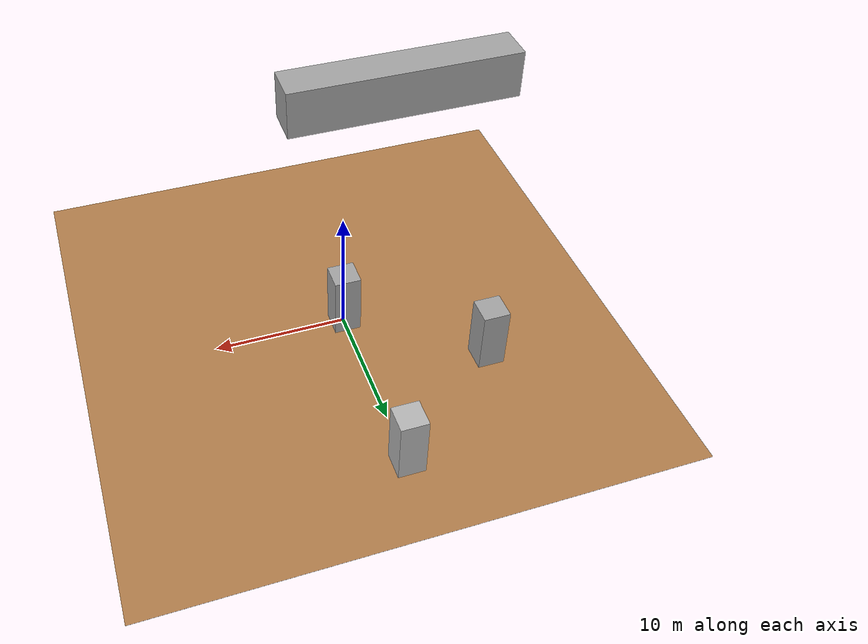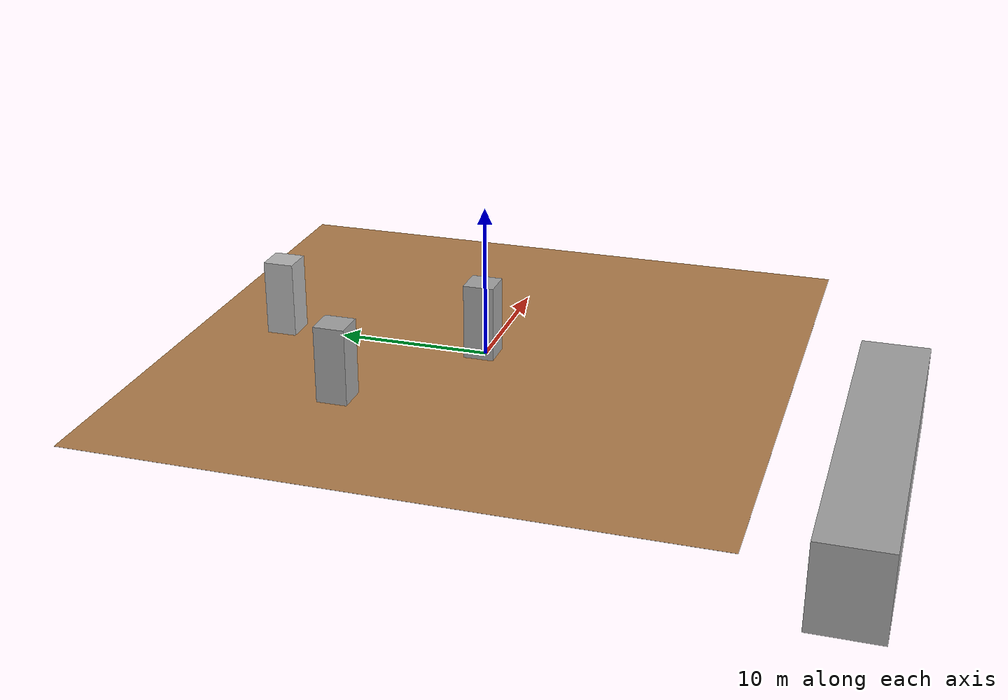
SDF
<?xml version="1.0" ?>
<sdf version="1.5">
 <world name="outdoor">
  <include>
    <uri>model://outdoor</uri>
    <name>out_building1</name>
    <pose>0 0 0 0 0 0</pose>
  </include>

  <include>
     <uri>model://sun</uri>
   <pose>0 0 30 0 0 0</pose>
   </include>

 </world>
</sdf>

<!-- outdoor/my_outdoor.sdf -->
<sdf version="1.5">
 <model name="my_outdoor">
   <static>true</static>
   <link name="outdoor_surface">
    <collision name="outdoor_collision">
     <geometry>
       <box>
        <size>40 40 0.01</size>
       </box>
     </geometry>
    </collision>

     <visual name="surface_mesh">
      <cast_shadows>true</cast_shadows>
      <geometry>
       <mesh>
         <uri>model://outdoor/meshes/ground_surface.dae</uri>
       </mesh>
      </geometry>
      <material>
            <script>
              <uri>file://media/materials/scripts/gazebo.material</uri>
              <name>Gazebo/Wood</name>
            </script>
          </material>
     </visual>
   </link>

<static>true</static>
   <link name="outdoor_building1">
    <collision name="building1_collision">
     <geometry>
       <box>
        <size>3 3 10</size>
       </box>
     </geometry>
    </collision>

     <visual name="building1_mesh">
      <cast_shadows>true</cast_shadows>
      <geometry>
       <mesh>
         <uri>model://outdoor/meshes/building1.dae</uri>
       </mesh>
      </geometry>
      <material>
        <script>
          <uri>model://outdoor/materials/scripts</uri>
          <uri>model://outdoor/materials/textures</uri>
          <name>outdoor/building</name>
        </script>
      </material>
     </visual>
   </link>

<static>true</static>
   <link name="outdoor_building2">
    <collision name="building2_collision">
     <geometry>
       <box>
        <size>3 3 10</size>
       </box>
     </geometry>
    </collision>

     <visual name="building2_mesh">
      <cast_shadows>true</cast_shadows>
      <geometry>
       <mesh>
         <uri>model://outdoor/meshes/building2.dae</uri>
       </mesh>
      </geometry>
      <material>
        <script>
          <uri>model://outdoor/materials/scripts</uri>
          <uri>model://outdoor/materials/textures</uri>
          <name>outdoor/building</name>
        </script>
      </material>
     </visual>
   </link>

<static>true</static>
   <link name="outdoor_building3">
    <collision name="building3_collision">
     <geometry>
       <box>
        <size>3 3 10</size>
       </box>
     </geometry>
    </collision>

     <visual name="building3_mesh">
      <cast_shadows>true</cast_shadows>
      <geometry>
       <mesh>
         <uri>model://outdoor/meshes/building1.dae</uri>
       </mesh>
      </geometry>
      <material>
        <script>
          <uri>model://outdoor/materials/scripts</uri>
          <uri>model://outdoor/materials/textures</uri>
          <name>outdoor/building</name>
        </script>
      </material>
     </visual>
   </link>

  <static>true</static>
   <link name="outdoor_building4">
    <collision name="building4_collision">
     <geometry>
       <box>
        <size>3 3 10</size>
       </box>
     </geometry>
    </collision>

     <visual name="building4_mesh">
      <cast_shadows>true</cast_shadows>
      <geometry>
       <mesh>
         <uri>model://outdoor/meshes/building4.dae</uri>
       </mesh>
      </geometry>
      <material>
        <script>
          <uri>model://outdoor/materials/scripts</uri>
          <uri>model://outdoor/materials/textures</uri>
          <name>outdoor/building</name>
        </script>
      </material>
     </visual>
   </link>

   <static>true</static>
   <link name="outdoor_building5">
    <collision name="building5_collision">
     <geometry>
       <box>
        <size>3 3 10</size>
       </box>
     </geometry>
    </collision>

     <visual name="building5_mesh">
      <cast_shadows>true</cast_shadows>
      <geometry>
       <mesh>
         <uri>model://outdoor/meshes/building5.dae</uri>
       </mesh>
      </geometry>
      <material>
        <script>
          <uri>model://outdoor/materials/scripts</uri>
          <uri>model://outdoor/materials/textures</uri>
          <name>outdoor/building</name>
        </script>
      </material>
     </visual>
   </link>

 </model>
</sdf>
